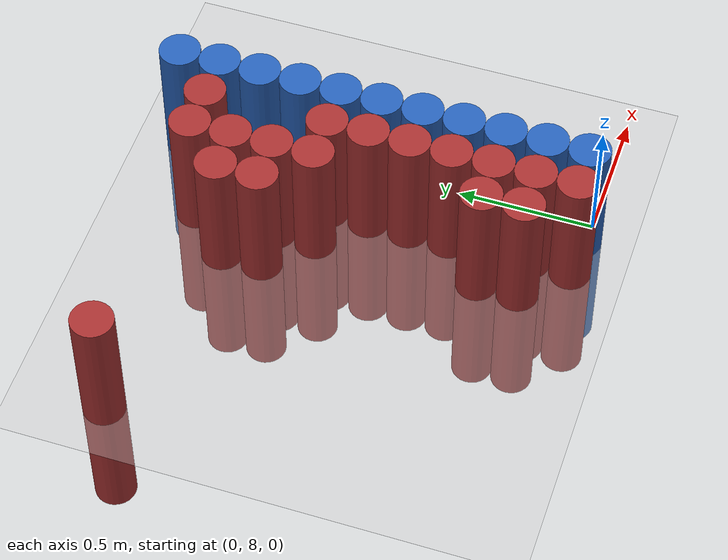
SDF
<sdf version="1.6">
 <world name="world_183">
  <model name="ground_plane">
   <static>1</static>
   <link name="link">
    <collision name="collision">
     <geometry><plane><normal>0 0 1</normal><size>100 100</size></plane></geometry>
     <surface><friction><ode><mu>100</mu><mu2>50</mu2></ode></friction></surface>
    </collision>
    <visual name="visual">
     <cast_shadows>0</cast_shadows>
     <geometry><plane><normal>0 0 1</normal><size>100 100</size></plane></geometry>
     <material>
      <script><uri>file://media/materials/scripts/gazebo.material</uri><name>Gazebo/Grey</name></script>
     </material>
    </visual>
   </link>
  </model>
  <model name="unit_cylinder_244">
   <static>1</static>
   <pose>-1.275000 9.375000 0.000000 0.000000 0.000000 0.000000</pose>
   <link name="link">
    <inertial>
     <mass>1</mass>
     <inertia><ixx>0.145833</ixx><ixy>0</ixy><ixz>0</ixz><iyy>0.145833</iyy><iyz>0</iyz><izz>0.125</izz></inertia>
    </inertial>
    <collision name="collision">
     <geometry><cylinder><radius>0.075000</radius><length>1</length></cylinder></geometry>
    </collision>
    <visual name="visual">
     <geometry><cylinder><radius>0.075000</radius><length>1</length></cylinder></geometry>
     <material>
      <ambient>0.648000 0.192000 0.192000 1</ambient>
      <diffuse>0.648000 0.192000 0.192000 1</diffuse>
     </material>
     <material>
      <script><name>Gazebo/Grey</name><uri>file://media/materials/scripts/gazebo.material</uri></script>
     </material>
    </visual>
   </link>
  </model>
  <model name="unit_cylinder_267">
   <static>1</static>
   <pose>-0.525000 9.075000 0.000000 0.000000 0.000000 0.000000</pose>
   <link name="link">
    <inertial>
     <mass>1</mass>
     <inertia><ixx>0.145833</ixx><ixy>0</ixy><ixz>0</ixz><iyy>0.145833</iyy><iyz>0</iyz><izz>0.125</izz></inertia>
    </inertial>
    <collision name="collision">
     <geometry><cylinder><radius>0.075000</radius><length>1</length></cylinder></geometry>
    </collision>
    <visual name="visual">
     <geometry><cylinder><radius>0.075000</radius><length>1</length></cylinder></geometry>
     <material>
      <ambient>0.648000 0.192000 0.192000 1</ambient>
      <diffuse>0.648000 0.192000 0.192000 1</diffuse>
     </material>
     <material>
      <script><name>Gazebo/Grey</name><uri>file://media/materials/scripts/gazebo.material</uri></script>
     </material>
    </visual>
   </link>
  </model>
  <model name="unit_cylinder_268">
   <static>1</static>
   <pose>-0.525000 9.225000 0.000000 0.000000 0.000000 0.000000</pose>
   <link name="link">
    <inertial>
     <mass>1</mass>
     <inertia><ixx>0.145833</ixx><ixy>0</ixy><ixz>0</ixz><iyy>0.145833</iyy><iyz>0</iyz><izz>0.125</izz></inertia>
    </inertial>
    <collision name="collision">
     <geometry><cylinder><radius>0.075000</radius><length>1</length></cylinder></geometry>
    </collision>
    <visual name="visual">
     <geometry><cylinder><radius>0.075000</radius><length>1</length></cylinder></geometry>
     <material>
      <ambient>0.648000 0.192000 0.192000 1</ambient>
      <diffuse>0.648000 0.192000 0.192000 1</diffuse>
     </material>
     <material>
      <script><name>Gazebo/Grey</name><uri>file://media/materials/scripts/gazebo.material</uri></script>
     </material>
    </visual>
   </link>
  </model>
  <model name="unit_cylinder_278">
   <static>1</static>
   <pose>-0.375000 8.175000 0.000000 0.000000 0.000000 0.000000</pose>
   <link name="link">
    <inertial>
     <mass>1</mass>
     <inertia><ixx>0.145833</ixx><ixy>0</ixy><ixz>0</ixz><iyy>0.145833</iyy><iyz>0</iyz><izz>0.125</izz></inertia>
    </inertial>
    <collision name="collision">
     <geometry><cylinder><radius>0.075000</radius><length>1</length></cylinder></geometry>
    </collision>
    <visual name="visual">
     <geometry><cylinder><radius>0.075000</radius><length>1</length></cylinder></geometry>
     <material>
      <ambient>0.648000 0.192000 0.192000 1</ambient>
      <diffuse>0.648000 0.192000 0.192000 1</diffuse>
     </material>
     <material>
      <script><name>Gazebo/Grey</name><uri>file://media/materials/scripts/gazebo.material</uri></script>
     </material>
    </visual>
   </link>
  </model>
  <model name="unit_cylinder_279">
   <static>1</static>
   <pose>-0.375000 8.325000 0.000000 0.000000 0.000000 0.000000</pose>
   <link name="link">
    <inertial>
     <mass>1</mass>
     <inertia><ixx>0.145833</ixx><ixy>0</ixy><ixz>0</ixz><iyy>0.145833</iyy><iyz>0</iyz><izz>0.125</izz></inertia>
    </inertial>
    <collision name="collision">
     <geometry><cylinder><radius>0.075000</radius><length>1</length></cylinder></geometry>
    </collision>
    <visual name="visual">
     <geometry><cylinder><radius>0.075000</radius><length>1</length></cylinder></geometry>
     <material>
      <ambient>0.648000 0.192000 0.192000 1</ambient>
      <diffuse>0.648000 0.192000 0.192000 1</diffuse>
     </material>
     <material>
      <script><name>Gazebo/Grey</name><uri>file://media/materials/scripts/gazebo.material</uri></script>
     </material>
    </visual>
   </link>
  </model>
  <model name="unit_cylinder_280">
   <static>1</static>
   <pose>-0.375000 8.925000 0.000000 0.000000 0.000000 0.000000</pose>
   <link name="link">
    <inertial>
     <mass>1</mass>
     <inertia><ixx>0.145833</ixx><ixy>0</ixy><ixz>0</ixz><iyy>0.145833</iyy><iyz>0</iyz><izz>0.125</izz></inertia>
    </inertial>
    <collision name="collision">
     <geometry><cylinder><radius>0.075000</radius><length>1</length></cylinder></geometry>
    </collision>
    <visual name="visual">
     <geometry><cylinder><radius>0.075000</radius><length>1</length></cylinder></geometry>
     <material>
      <ambient>0.648000 0.192000 0.192000 1</ambient>
      <diffuse>0.648000 0.192000 0.192000 1</diffuse>
     </material>
     <material>
      <script><name>Gazebo/Grey</name><uri>file://media/materials/scripts/gazebo.material</uri></script>
     </material>
    </visual>
   </link>
  </model>
  <model name="unit_cylinder_281">
   <static>1</static>
   <pose>-0.375000 9.075000 0.000000 0.000000 0.000000 0.000000</pose>
   <link name="link">
    <inertial>
     <mass>1</mass>
     <inertia><ixx>0.145833</ixx><ixy>0</ixy><ixz>0</ixz><iyy>0.145833</iyy><iyz>0</iyz><izz>0.125</izz></inertia>
    </inertial>
    <collision name="collision">
     <geometry><cylinder><radius>0.075000</radius><length>1</length></cylinder></geometry>
    </collision>
    <visual name="visual">
     <geometry><cylinder><radius>0.075000</radius><length>1</length></cylinder></geometry>
     <material>
      <ambient>0.648000 0.192000 0.192000 1</ambient>
      <diffuse>0.648000 0.192000 0.192000 1</diffuse>
     </material>
     <material>
      <script><name>Gazebo/Grey</name><uri>file://media/materials/scripts/gazebo.material</uri></script>
     </material>
    </visual>
   </link>
  </model>
  <model name="unit_cylinder_282">
   <static>1</static>
   <pose>-0.375000 9.225000 0.000000 0.000000 0.000000 0.000000</pose>
   <link name="link">
    <inertial>
     <mass>1</mass>
     <inertia><ixx>0.145833</ixx><ixy>0</ixy><ixz>0</ixz><iyy>0.145833</iyy><iyz>0</iyz><izz>0.125</izz></inertia>
    </inertial>
    <collision name="collision">
     <geometry><cylinder><radius>0.075000</radius><length>1</length></cylinder></geometry>
    </collision>
    <visual name="visual">
     <geometry><cylinder><radius>0.075000</radius><length>1</length></cylinder></geometry>
     <material>
      <ambient>0.648000 0.192000 0.192000 1</ambient>
      <diffuse>0.648000 0.192000 0.192000 1</diffuse>
     </material>
     <material>
      <script><name>Gazebo/Grey</name><uri>file://media/materials/scripts/gazebo.material</uri></script>
     </material>
    </visual>
   </link>
  </model>
  <model name="unit_cylinder_283">
   <static>1</static>
   <pose>-0.375000 9.375000 0.000000 0.000000 0.000000 0.000000</pose>
   <link name="link">
    <inertial>
     <mass>1</mass>
     <inertia><ixx>0.145833</ixx><ixy>0</ixy><ixz>0</ixz><iyy>0.145833</iyy><iyz>0</iyz><izz>0.125</izz></inertia>
    </inertial>
    <collision name="collision">
     <geometry><cylinder><radius>0.075000</radius><length>1</length></cylinder></geometry>
    </collision>
    <visual name="visual">
     <geometry><cylinder><radius>0.075000</radius><length>1</length></cylinder></geometry>
     <material>
      <ambient>0.648000 0.192000 0.192000 1</ambient>
      <diffuse>0.648000 0.192000 0.192000 1</diffuse>
     </material>
     <material>
      <script><name>Gazebo/Grey</name><uri>file://media/materials/scripts/gazebo.material</uri></script>
     </material>
    </visual>
   </link>
  </model>
  <model name="unit_cylinder_290">
   <static>1</static>
   <pose>-0.225000 8.025000 0.000000 0.000000 0.000000 0.000000</pose>
   <link name="link">
    <inertial>
     <mass>1</mass>
     <inertia><ixx>0.145833</ixx><ixy>0</ixy><ixz>0</ixz><iyy>0.145833</iyy><iyz>0</iyz><izz>0.125</izz></inertia>
    </inertial>
    <collision name="collision">
     <geometry><cylinder><radius>0.075000</radius><length>1</length></cylinder></geometry>
    </collision>
    <visual name="visual">
     <geometry><cylinder><radius>0.075000</radius><length>1</length></cylinder></geometry>
     <material>
      <ambient>0.648000 0.192000 0.192000 1</ambient>
      <diffuse>0.648000 0.192000 0.192000 1</diffuse>
     </material>
     <material>
      <script><name>Gazebo/Grey</name><uri>file://media/materials/scripts/gazebo.material</uri></script>
     </material>
    </visual>
   </link>
  </model>
  <model name="unit_cylinder_291">
   <static>1</static>
   <pose>-0.225000 8.175000 0.000000 0.000000 0.000000 0.000000</pose>
   <link name="link">
    <inertial>
     <mass>1</mass>
     <inertia><ixx>0.145833</ixx><ixy>0</ixy><ixz>0</ixz><iyy>0.145833</iyy><iyz>0</iyz><izz>0.125</izz></inertia>
    </inertial>
    <collision name="collision">
     <geometry><cylinder><radius>0.075000</radius><length>1</length></cylinder></geometry>
    </collision>
    <visual name="visual">
     <geometry><cylinder><radius>0.075000</radius><length>1</length></cylinder></geometry>
     <material>
      <ambient>0.648000 0.192000 0.192000 1</ambient>
      <diffuse>0.648000 0.192000 0.192000 1</diffuse>
     </material>
     <material>
      <script><name>Gazebo/Grey</name><uri>file://media/materials/scripts/gazebo.material</uri></script>
     </material>
    </visual>
   </link>
  </model>
  <model name="unit_cylinder_292">
   <static>1</static>
   <pose>-0.225000 8.325000 0.000000 0.000000 0.000000 0.000000</pose>
   <link name="link">
    <inertial>
     <mass>1</mass>
     <inertia><ixx>0.145833</ixx><ixy>0</ixy><ixz>0</ixz><iyy>0.145833</iyy><iyz>0</iyz><izz>0.125</izz></inertia>
    </inertial>
    <collision name="collision">
     <geometry><cylinder><radius>0.075000</radius><length>1</length></cylinder></geometry>
    </collision>
    <visual name="visual">
     <geometry><cylinder><radius>0.075000</radius><length>1</length></cylinder></geometry>
     <material>
      <ambient>0.648000 0.192000 0.192000 1</ambient>
      <diffuse>0.648000 0.192000 0.192000 1</diffuse>
     </material>
     <material>
      <script><name>Gazebo/Grey</name><uri>file://media/materials/scripts/gazebo.material</uri></script>
     </material>
    </visual>
   </link>
  </model>
  <model name="unit_cylinder_293">
   <static>1</static>
   <pose>-0.225000 8.475000 0.000000 0.000000 0.000000 0.000000</pose>
   <link name="link">
    <inertial>
     <mass>1</mass>
     <inertia><ixx>0.145833</ixx><ixy>0</ixy><ixz>0</ixz><iyy>0.145833</iyy><iyz>0</iyz><izz>0.125</izz></inertia>
    </inertial>
    <collision name="collision">
     <geometry><cylinder><radius>0.075000</radius><length>1</length></cylinder></geometry>
    </collision>
    <visual name="visual">
     <geometry><cylinder><radius>0.075000</radius><length>1</length></cylinder></geometry>
     <material>
      <ambient>0.648000 0.192000 0.192000 1</ambient>
      <diffuse>0.648000 0.192000 0.192000 1</diffuse>
     </material>
     <material>
      <script><name>Gazebo/Grey</name><uri>file://media/materials/scripts/gazebo.material</uri></script>
     </material>
    </visual>
   </link>
  </model>
  <model name="unit_cylinder_294">
   <static>1</static>
   <pose>-0.225000 8.625000 0.000000 0.000000 0.000000 0.000000</pose>
   <link name="link">
    <inertial>
     <mass>1</mass>
     <inertia><ixx>0.145833</ixx><ixy>0</ixy><ixz>0</ixz><iyy>0.145833</iyy><iyz>0</iyz><izz>0.125</izz></inertia>
    </inertial>
    <collision name="collision">
     <geometry><cylinder><radius>0.075000</radius><length>1</length></cylinder></geometry>
    </collision>
    <visual name="visual">
     <geometry><cylinder><radius>0.075000</radius><length>1</length></cylinder></geometry>
     <material>
      <ambient>0.648000 0.192000 0.192000 1</ambient>
      <diffuse>0.648000 0.192000 0.192000 1</diffuse>
     </material>
     <material>
      <script><name>Gazebo/Grey</name><uri>file://media/materials/scripts/gazebo.material</uri></script>
     </material>
    </visual>
   </link>
  </model>
  <model name="unit_cylinder_295">
   <static>1</static>
   <pose>-0.225000 8.775000 0.000000 0.000000 0.000000 0.000000</pose>
   <link name="link">
    <inertial>
     <mass>1</mass>
     <inertia><ixx>0.145833</ixx><ixy>0</ixy><ixz>0</ixz><iyy>0.145833</iyy><iyz>0</iyz><izz>0.125</izz></inertia>
    </inertial>
    <collision name="collision">
     <geometry><cylinder><radius>0.075000</radius><length>1</length></cylinder></geometry>
    </collision>
    <visual name="visual">
     <geometry><cylinder><radius>0.075000</radius><length>1</length></cylinder></geometry>
     <material>
      <ambient>0.648000 0.192000 0.192000 1</ambient>
      <diffuse>0.648000 0.192000 0.192000 1</diffuse>
     </material>
     <material>
      <script><name>Gazebo/Grey</name><uri>file://media/materials/scripts/gazebo.material</uri></script>
     </material>
    </visual>
   </link>
  </model>
  <model name="unit_cylinder_296">
   <static>1</static>
   <pose>-0.225000 8.925000 0.000000 0.000000 0.000000 0.000000</pose>
   <link name="link">
    <inertial>
     <mass>1</mass>
     <inertia><ixx>0.145833</ixx><ixy>0</ixy><ixz>0</ixz><iyy>0.145833</iyy><iyz>0</iyz><izz>0.125</izz></inertia>
    </inertial>
    <collision name="collision">
     <geometry><cylinder><radius>0.075000</radius><length>1</length></cylinder></geometry>
    </collision>
    <visual name="visual">
     <geometry><cylinder><radius>0.075000</radius><length>1</length></cylinder></geometry>
     <material>
      <ambient>0.648000 0.192000 0.192000 1</ambient>
      <diffuse>0.648000 0.192000 0.192000 1</diffuse>
     </material>
     <material>
      <script><name>Gazebo/Grey</name><uri>file://media/materials/scripts/gazebo.material</uri></script>
     </material>
    </visual>
   </link>
  </model>
  <model name="unit_cylinder_297">
   <static>1</static>
   <pose>-0.225000 9.375000 0.000000 0.000000 0.000000 0.000000</pose>
   <link name="link">
    <inertial>
     <mass>1</mass>
     <inertia><ixx>0.145833</ixx><ixy>0</ixy><ixz>0</ixz><iyy>0.145833</iyy><iyz>0</iyz><izz>0.125</izz></inertia>
    </inertial>
    <collision name="collision">
     <geometry><cylinder><radius>0.075000</radius><length>1</length></cylinder></geometry>
    </collision>
    <visual name="visual">
     <geometry><cylinder><radius>0.075000</radius><length>1</length></cylinder></geometry>
     <material>
      <ambient>0.648000 0.192000 0.192000 1</ambient>
      <diffuse>0.648000 0.192000 0.192000 1</diffuse>
     </material>
     <material>
      <script><name>Gazebo/Grey</name><uri>file://media/materials/scripts/gazebo.material</uri></script>
     </material>
    </visual>
   </link>
  </model>
  <model name="unit_cylinder_317">
   <static>1</static>
   <pose>-0.075000 8.025000 0.000000 0.000000 0.000000 0.000000</pose>
   <link name="link">
    <inertial>
     <mass>1</mass>
     <inertia><ixx>0.145833</ixx><ixy>0</ixy><ixz>0</ixz><iyy>0.145833</iyy><iyz>0</iyz><izz>0.125</izz></inertia>
    </inertial>
    <collision name="collision">
     <geometry><cylinder><radius>0.075000</radius><length>1</length></cylinder></geometry>
    </collision>
    <visual name="visual">
     <geometry><cylinder><radius>0.075000</radius><length>1</length></cylinder></geometry>
     <material>
      <ambient>0.152000 0.379000 0.720000 1</ambient>
      <diffuse>0.152000 0.379000 0.720000 1</diffuse>
     </material>
     <material>
      <script><name>Gazebo/Grey</name><uri>file://media/materials/scripts/gazebo.material</uri></script>
     </material>
    </visual>
   </link>
  </model>
  <model name="unit_cylinder_318">
   <static>1</static>
   <pose>-0.075000 8.175000 0.000000 0.000000 0.000000 0.000000</pose>
   <link name="link">
    <inertial>
     <mass>1</mass>
     <inertia><ixx>0.145833</ixx><ixy>0</ixy><ixz>0</ixz><iyy>0.145833</iyy><iyz>0</iyz><izz>0.125</izz></inertia>
    </inertial>
    <collision name="collision">
     <geometry><cylinder><radius>0.075000</radius><length>1</length></cylinder></geometry>
    </collision>
    <visual name="visual">
     <geometry><cylinder><radius>0.075000</radius><length>1</length></cylinder></geometry>
     <material>
      <ambient>0.152000 0.379000 0.720000 1</ambient>
      <diffuse>0.152000 0.379000 0.720000 1</diffuse>
     </material>
     <material>
      <script><name>Gazebo/Grey</name><uri>file://media/materials/scripts/gazebo.material</uri></script>
     </material>
    </visual>
   </link>
  </model>
  <model name="unit_cylinder_319">
   <static>1</static>
   <pose>-0.075000 8.325000 0.000000 0.000000 0.000000 0.000000</pose>
   <link name="link">
    <inertial>
     <mass>1</mass>
     <inertia><ixx>0.145833</ixx><ixy>0</ixy><ixz>0</ixz><iyy>0.145833</iyy><iyz>0</iyz><izz>0.125</izz></inertia>
    </inertial>
    <collision name="collision">
     <geometry><cylinder><radius>0.075000</radius><length>1</length></cylinder></geometry>
    </collision>
    <visual name="visual">
     <geometry><cylinder><radius>0.075000</radius><length>1</length></cylinder></geometry>
     <material>
      <ambient>0.152000 0.379000 0.720000 1</ambient>
      <diffuse>0.152000 0.379000 0.720000 1</diffuse>
     </material>
     <material>
      <script><name>Gazebo/Grey</name><uri>file://media/materials/scripts/gazebo.material</uri></script>
     </material>
    </visual>
   </link>
  </model>
  <model name="unit_cylinder_320">
   <static>1</static>
   <pose>-0.075000 8.475000 0.000000 0.000000 0.000000 0.000000</pose>
   <link name="link">
    <inertial>
     <mass>1</mass>
     <inertia><ixx>0.145833</ixx><ixy>0</ixy><ixz>0</ixz><iyy>0.145833</iyy><iyz>0</iyz><izz>0.125</izz></inertia>
    </inertial>
    <collision name="collision">
     <geometry><cylinder><radius>0.075000</radius><length>1</length></cylinder></geometry>
    </collision>
    <visual name="visual">
     <geometry><cylinder><radius>0.075000</radius><length>1</length></cylinder></geometry>
     <material>
      <ambient>0.152000 0.379000 0.720000 1</ambient>
      <diffuse>0.152000 0.379000 0.720000 1</diffuse>
     </material>
     <material>
      <script><name>Gazebo/Grey</name><uri>file://media/materials/scripts/gazebo.material</uri></script>
     </material>
    </visual>
   </link>
  </model>
  <model name="unit_cylinder_321">
   <static>1</static>
   <pose>-0.075000 8.625000 0.000000 0.000000 0.000000 0.000000</pose>
   <link name="link">
    <inertial>
     <mass>1</mass>
     <inertia><ixx>0.145833</ixx><ixy>0</ixy><ixz>0</ixz><iyy>0.145833</iyy><iyz>0</iyz><izz>0.125</izz></inertia>
    </inertial>
    <collision name="collision">
     <geometry><cylinder><radius>0.075000</radius><length>1</length></cylinder></geometry>
    </collision>
    <visual name="visual">
     <geometry><cylinder><radius>0.075000</radius><length>1</length></cylinder></geometry>
     <material>
      <ambient>0.152000 0.379000 0.720000 1</ambient>
      <diffuse>0.152000 0.379000 0.720000 1</diffuse>
     </material>
     <material>
      <script><name>Gazebo/Grey</name><uri>file://media/materials/scripts/gazebo.material</uri></script>
     </material>
    </visual>
   </link>
  </model>
  <model name="unit_cylinder_322">
   <static>1</static>
   <pose>-0.075000 8.775000 0.000000 0.000000 0.000000 0.000000</pose>
   <link name="link">
    <inertial>
     <mass>1</mass>
     <inertia><ixx>0.145833</ixx><ixy>0</ixy><ixz>0</ixz><iyy>0.145833</iyy><iyz>0</iyz><izz>0.125</izz></inertia>
    </inertial>
    <collision name="collision">
     <geometry><cylinder><radius>0.075000</radius><length>1</length></cylinder></geometry>
    </collision>
    <visual name="visual">
     <geometry><cylinder><radius>0.075000</radius><length>1</length></cylinder></geometry>
     <material>
      <ambient>0.152000 0.379000 0.720000 1</ambient>
      <diffuse>0.152000 0.379000 0.720000 1</diffuse>
     </material>
     <material>
      <script><name>Gazebo/Grey</name><uri>file://media/materials/scripts/gazebo.material</uri></script>
     </material>
    </visual>
   </link>
  </model>
  <model name="unit_cylinder_323">
   <static>1</static>
   <pose>-0.075000 8.925000 0.000000 0.000000 0.000000 0.000000</pose>
   <link name="link">
    <inertial>
     <mass>1</mass>
     <inertia><ixx>0.145833</ixx><ixy>0</ixy><ixz>0</ixz><iyy>0.145833</iyy><iyz>0</iyz><izz>0.125</izz></inertia>
    </inertial>
    <collision name="collision">
     <geometry><cylinder><radius>0.075000</radius><length>1</length></cylinder></geometry>
    </collision>
    <visual name="visual">
     <geometry><cylinder><radius>0.075000</radius><length>1</length></cylinder></geometry>
     <material>
      <ambient>0.152000 0.379000 0.720000 1</ambient>
      <diffuse>0.152000 0.379000 0.720000 1</diffuse>
     </material>
     <material>
      <script><name>Gazebo/Grey</name><uri>file://media/materials/scripts/gazebo.material</uri></script>
     </material>
    </visual>
   </link>
  </model>
  <model name="unit_cylinder_324">
   <static>1</static>
   <pose>-0.075000 9.075000 0.000000 0.000000 0.000000 0.000000</pose>
   <link name="link">
    <inertial>
     <mass>1</mass>
     <inertia><ixx>0.145833</ixx><ixy>0</ixy><ixz>0</ixz><iyy>0.145833</iyy><iyz>0</iyz><izz>0.125</izz></inertia>
    </inertial>
    <collision name="collision">
     <geometry><cylinder><radius>0.075000</radius><length>1</length></cylinder></geometry>
    </collision>
    <visual name="visual">
     <geometry><cylinder><radius>0.075000</radius><length>1</length></cylinder></geometry>
     <material>
      <ambient>0.152000 0.379000 0.720000 1</ambient>
      <diffuse>0.152000 0.379000 0.720000 1</diffuse>
     </material>
     <material>
      <script><name>Gazebo/Grey</name><uri>file://media/materials/scripts/gazebo.material</uri></script>
     </material>
    </visual>
   </link>
  </model>
  <model name="unit_cylinder_325">
   <static>1</static>
   <pose>-0.075000 9.225000 0.000000 0.000000 0.000000 0.000000</pose>
   <link name="link">
    <inertial>
     <mass>1</mass>
     <inertia><ixx>0.145833</ixx><ixy>0</ixy><ixz>0</ixz><iyy>0.145833</iyy><iyz>0</iyz><izz>0.125</izz></inertia>
    </inertial>
    <collision name="collision">
     <geometry><cylinder><radius>0.075000</radius><length>1</length></cylinder></geometry>
    </collision>
    <visual name="visual">
     <geometry><cylinder><radius>0.075000</radius><length>1</length></cylinder></geometry>
     <material>
      <ambient>0.152000 0.379000 0.720000 1</ambient>
      <diffuse>0.152000 0.379000 0.720000 1</diffuse>
     </material>
     <material>
      <script><name>Gazebo/Grey</name><uri>file://media/materials/scripts/gazebo.material</uri></script>
     </material>
    </visual>
   </link>
  </model>
  <model name="unit_cylinder_326">
   <static>1</static>
   <pose>-0.075000 9.375000 0.000000 0.000000 0.000000 0.000000</pose>
   <link name="link">
    <inertial>
     <mass>1</mass>
     <inertia><ixx>0.145833</ixx><ixy>0</ixy><ixz>0</ixz><iyy>0.145833</iyy><iyz>0</iyz><izz>0.125</izz></inertia>
    </inertial>
    <collision name="collision">
     <geometry><cylinder><radius>0.075000</radius><length>1</length></cylinder></geometry>
    </collision>
    <visual name="visual">
     <geometry><cylinder><radius>0.075000</radius><length>1</length></cylinder></geometry>
     <material>
      <ambient>0.152000 0.379000 0.720000 1</ambient>
      <diffuse>0.152000 0.379000 0.720000 1</diffuse>
     </material>
     <material>
      <script><name>Gazebo/Grey</name><uri>file://media/materials/scripts/gazebo.material</uri></script>
     </material>
    </visual>
   </link>
  </model>
  <model name="unit_cylinder_327">
   <static>1</static>
   <pose>-0.075000 9.525000 0.000000 0.000000 0.000000 0.000000</pose>
   <link name="link">
    <inertial>
     <mass>1</mass>
     <inertia><ixx>0.145833</ixx><ixy>0</ixy><ixz>0</ixz><iyy>0.145833</iyy><iyz>0</iyz><izz>0.125</izz></inertia>
    </inertial>
    <collision name="collision">
     <geometry><cylinder><radius>0.075000</radius><length>1</length></cylinder></geometry>
    </collision>
    <visual name="visual">
     <geometry><cylinder><radius>0.075000</radius><length>1</length></cylinder></geometry>
     <material>
      <ambient>0.152000 0.379000 0.720000 1</ambient>
      <diffuse>0.152000 0.379000 0.720000 1</diffuse>
     </material>
     <material>
      <script><name>Gazebo/Grey</name><uri>file://media/materials/scripts/gazebo.material</uri></script>
     </material>
    </visual>
   </link>
  </model>
 </world>
</sdf>
